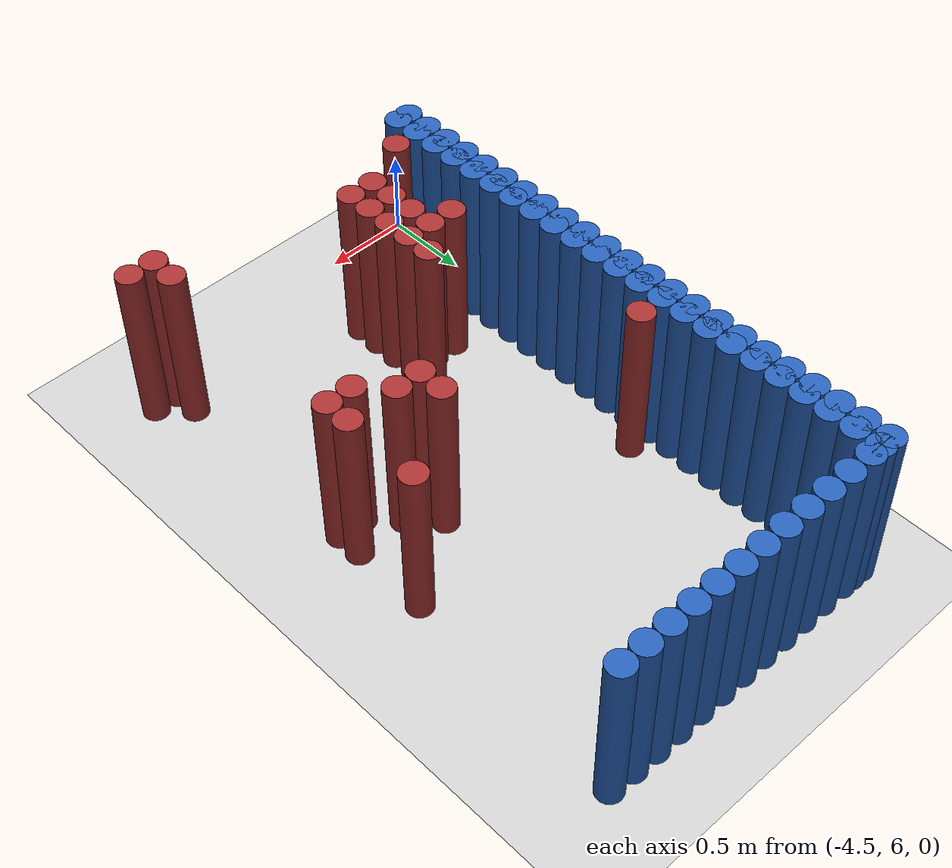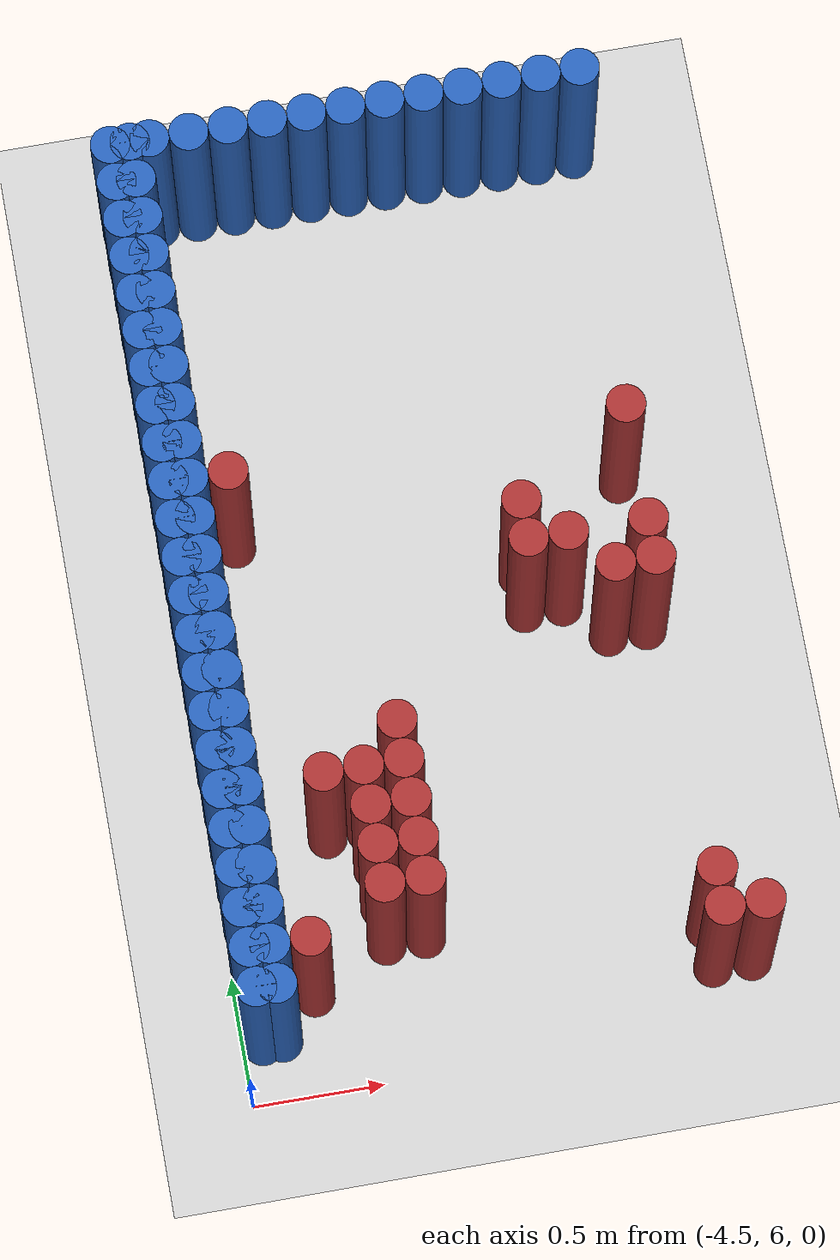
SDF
<sdf version="1.6">
 <world name="barn_world">
  <model name="ground_plane">
   <static>1</static>
   <link name="link">
    <collision name="collision">
     <geometry><plane><normal>0 0 1</normal><size>100 100</size></plane></geometry>
    </collision>
    <visual name="visual">
     <geometry><plane><normal>0 0 1</normal><size>100 100</size></plane></geometry>
     <material>
      <script><uri>file://media/materials/scripts/gazebo.material</uri><name>Gazebo/Grey</name></script>
     </material>
    </visual>
   </link>
  </model>
  <model name="unit_cylinder_133">
   <static>1</static>
   <pose>-4.3500 6.2250 0.5 0 0 0</pose>
   <link name="link">
    <collision name="collision">
     <geometry><cylinder><radius>0.075</radius><length>1</length></cylinder></geometry>
    </collision>
    <visual name="visual">
     <geometry><cylinder><radius>0.075</radius><length>1</length></cylinder></geometry>
     <material><ambient>0.152 0.379 0.72 1</ambient><diffuse>0.152 0.379 0.72 1</diffuse></material>
    </visual>
   </link>
  </model>
  <model name="unit_cylinder_134">
   <static>1</static>
   <pose>-4.3500 6.3750 0.5 0 0 0</pose>
   <link name="link">
    <collision name="collision">
     <geometry><cylinder><radius>0.075</radius><length>1</length></cylinder></geometry>
    </collision>
    <visual name="visual">
     <geometry><cylinder><radius>0.075</radius><length>1</length></cylinder></geometry>
     <material><ambient>0.152 0.379 0.72 1</ambient><diffuse>0.152 0.379 0.72 1</diffuse></material>
    </visual>
   </link>
  </model>
  <model name="unit_cylinder_135">
   <static>1</static>
   <pose>-4.3500 6.5250 0.5 0 0 0</pose>
   <link name="link">
    <collision name="collision">
     <geometry><cylinder><radius>0.075</radius><length>1</length></cylinder></geometry>
    </collision>
    <visual name="visual">
     <geometry><cylinder><radius>0.075</radius><length>1</length></cylinder></geometry>
     <material><ambient>0.152 0.379 0.72 1</ambient><diffuse>0.152 0.379 0.72 1</diffuse></material>
    </visual>
   </link>
  </model>
  <model name="unit_cylinder_136">
   <static>1</static>
   <pose>-4.3500 6.6750 0.5 0 0 0</pose>
   <link name="link">
    <collision name="collision">
     <geometry><cylinder><radius>0.075</radius><length>1</length></cylinder></geometry>
    </collision>
    <visual name="visual">
     <geometry><cylinder><radius>0.075</radius><length>1</length></cylinder></geometry>
     <material><ambient>0.152 0.379 0.72 1</ambient><diffuse>0.152 0.379 0.72 1</diffuse></material>
    </visual>
   </link>
  </model>
  <model name="unit_cylinder_137">
   <static>1</static>
   <pose>-4.3500 6.8250 0.5 0 0 0</pose>
   <link name="link">
    <collision name="collision">
     <geometry><cylinder><radius>0.075</radius><length>1</length></cylinder></geometry>
    </collision>
    <visual name="visual">
     <geometry><cylinder><radius>0.075</radius><length>1</length></cylinder></geometry>
     <material><ambient>0.152 0.379 0.72 1</ambient><diffuse>0.152 0.379 0.72 1</diffuse></material>
    </visual>
   </link>
  </model>
  <model name="unit_cylinder_138">
   <static>1</static>
   <pose>-4.3500 6.9750 0.5 0 0 0</pose>
   <link name="link">
    <collision name="collision">
     <geometry><cylinder><radius>0.075</radius><length>1</length></cylinder></geometry>
    </collision>
    <visual name="visual">
     <geometry><cylinder><radius>0.075</radius><length>1</length></cylinder></geometry>
     <material><ambient>0.152 0.379 0.72 1</ambient><diffuse>0.152 0.379 0.72 1</diffuse></material>
    </visual>
   </link>
  </model>
  <model name="unit_cylinder_139">
   <static>1</static>
   <pose>-4.3500 7.1250 0.5 0 0 0</pose>
   <link name="link">
    <collision name="collision">
     <geometry><cylinder><radius>0.075</radius><length>1</length></cylinder></geometry>
    </collision>
    <visual name="visual">
     <geometry><cylinder><radius>0.075</radius><length>1</length></cylinder></geometry>
     <material><ambient>0.152 0.379 0.72 1</ambient><diffuse>0.152 0.379 0.72 1</diffuse></material>
    </visual>
   </link>
  </model>
  <model name="unit_cylinder_140">
   <static>1</static>
   <pose>-4.3500 7.2750 0.5 0 0 0</pose>
   <link name="link">
    <collision name="collision">
     <geometry><cylinder><radius>0.075</radius><length>1</length></cylinder></geometry>
    </collision>
    <visual name="visual">
     <geometry><cylinder><radius>0.075</radius><length>1</length></cylinder></geometry>
     <material><ambient>0.152 0.379 0.72 1</ambient><diffuse>0.152 0.379 0.72 1</diffuse></material>
    </visual>
   </link>
  </model>
  <model name="unit_cylinder_141">
   <static>1</static>
   <pose>-4.3500 7.4250 0.5 0 0 0</pose>
   <link name="link">
    <collision name="collision">
     <geometry><cylinder><radius>0.075</radius><length>1</length></cylinder></geometry>
    </collision>
    <visual name="visual">
     <geometry><cylinder><radius>0.075</radius><length>1</length></cylinder></geometry>
     <material><ambient>0.152 0.379 0.72 1</ambient><diffuse>0.152 0.379 0.72 1</diffuse></material>
    </visual>
   </link>
  </model>
  <model name="unit_cylinder_142">
   <static>1</static>
   <pose>-4.3500 7.5750 0.5 0 0 0</pose>
   <link name="link">
    <collision name="collision">
     <geometry><cylinder><radius>0.075</radius><length>1</length></cylinder></geometry>
    </collision>
    <visual name="visual">
     <geometry><cylinder><radius>0.075</radius><length>1</length></cylinder></geometry>
     <material><ambient>0.152 0.379 0.72 1</ambient><diffuse>0.152 0.379 0.72 1</diffuse></material>
    </visual>
   </link>
  </model>
  <model name="unit_cylinder_143">
   <static>1</static>
   <pose>-4.3500 7.7250 0.5 0 0 0</pose>
   <link name="link">
    <collision name="collision">
     <geometry><cylinder><radius>0.075</radius><length>1</length></cylinder></geometry>
    </collision>
    <visual name="visual">
     <geometry><cylinder><radius>0.075</radius><length>1</length></cylinder></geometry>
     <material><ambient>0.152 0.379 0.72 1</ambient><diffuse>0.152 0.379 0.72 1</diffuse></material>
    </visual>
   </link>
  </model>
  <model name="unit_cylinder_144">
   <static>1</static>
   <pose>-4.3500 7.8750 0.5 0 0 0</pose>
   <link name="link">
    <collision name="collision">
     <geometry><cylinder><radius>0.075</radius><length>1</length></cylinder></geometry>
    </collision>
    <visual name="visual">
     <geometry><cylinder><radius>0.075</radius><length>1</length></cylinder></geometry>
     <material><ambient>0.152 0.379 0.72 1</ambient><diffuse>0.152 0.379 0.72 1</diffuse></material>
    </visual>
   </link>
  </model>
  <model name="unit_cylinder_145">
   <static>1</static>
   <pose>-4.3500 8.0250 0.5 0 0 0</pose>
   <link name="link">
    <collision name="collision">
     <geometry><cylinder><radius>0.075</radius><length>1</length></cylinder></geometry>
    </collision>
    <visual name="visual">
     <geometry><cylinder><radius>0.075</radius><length>1</length></cylinder></geometry>
     <material><ambient>0.152 0.379 0.72 1</ambient><diffuse>0.152 0.379 0.72 1</diffuse></material>
    </visual>
   </link>
  </model>
  <model name="unit_cylinder_146">
   <static>1</static>
   <pose>-4.3500 8.1750 0.5 0 0 0</pose>
   <link name="link">
    <collision name="collision">
     <geometry><cylinder><radius>0.075</radius><length>1</length></cylinder></geometry>
    </collision>
    <visual name="visual">
     <geometry><cylinder><radius>0.075</radius><length>1</length></cylinder></geometry>
     <material><ambient>0.152 0.379 0.72 1</ambient><diffuse>0.152 0.379 0.72 1</diffuse></material>
    </visual>
   </link>
  </model>
  <model name="unit_cylinder_147">
   <static>1</static>
   <pose>-4.3500 8.3250 0.5 0 0 0</pose>
   <link name="link">
    <collision name="collision">
     <geometry><cylinder><radius>0.075</radius><length>1</length></cylinder></geometry>
    </collision>
    <visual name="visual">
     <geometry><cylinder><radius>0.075</radius><length>1</length></cylinder></geometry>
     <material><ambient>0.152 0.379 0.72 1</ambient><diffuse>0.152 0.379 0.72 1</diffuse></material>
    </visual>
   </link>
  </model>
  <model name="unit_cylinder_148">
   <static>1</static>
   <pose>-4.3500 8.4750 0.5 0 0 0</pose>
   <link name="link">
    <collision name="collision">
     <geometry><cylinder><radius>0.075</radius><length>1</length></cylinder></geometry>
    </collision>
    <visual name="visual">
     <geometry><cylinder><radius>0.075</radius><length>1</length></cylinder></geometry>
     <material><ambient>0.152 0.379 0.72 1</ambient><diffuse>0.152 0.379 0.72 1</diffuse></material>
    </visual>
   </link>
  </model>
  <model name="unit_cylinder_149">
   <static>1</static>
   <pose>-4.3500 8.6250 0.5 0 0 0</pose>
   <link name="link">
    <collision name="collision">
     <geometry><cylinder><radius>0.075</radius><length>1</length></cylinder></geometry>
    </collision>
    <visual name="visual">
     <geometry><cylinder><radius>0.075</radius><length>1</length></cylinder></geometry>
     <material><ambient>0.152 0.379 0.72 1</ambient><diffuse>0.152 0.379 0.72 1</diffuse></material>
    </visual>
   </link>
  </model>
  <model name="unit_cylinder_150">
   <static>1</static>
   <pose>-4.3500 8.7750 0.5 0 0 0</pose>
   <link name="link">
    <collision name="collision">
     <geometry><cylinder><radius>0.075</radius><length>1</length></cylinder></geometry>
    </collision>
    <visual name="visual">
     <geometry><cylinder><radius>0.075</radius><length>1</length></cylinder></geometry>
     <material><ambient>0.152 0.379 0.72 1</ambient><diffuse>0.152 0.379 0.72 1</diffuse></material>
    </visual>
   </link>
  </model>
  <model name="unit_cylinder_151">
   <static>1</static>
   <pose>-4.3500 8.9250 0.5 0 0 0</pose>
   <link name="link">
    <collision name="collision">
     <geometry><cylinder><radius>0.075</radius><length>1</length></cylinder></geometry>
    </collision>
    <visual name="visual">
     <geometry><cylinder><radius>0.075</radius><length>1</length></cylinder></geometry>
     <material><ambient>0.152 0.379 0.72 1</ambient><diffuse>0.152 0.379 0.72 1</diffuse></material>
    </visual>
   </link>
  </model>
  <model name="unit_cylinder_152">
   <static>1</static>
   <pose>-4.3500 9.0750 0.5 0 0 0</pose>
   <link name="link">
    <collision name="collision">
     <geometry><cylinder><radius>0.075</radius><length>1</length></cylinder></geometry>
    </collision>
    <visual name="visual">
     <geometry><cylinder><radius>0.075</radius><length>1</length></cylinder></geometry>
     <material><ambient>0.152 0.379 0.72 1</ambient><diffuse>0.152 0.379 0.72 1</diffuse></material>
    </visual>
   </link>
  </model>
  <model name="unit_cylinder_153">
   <static>1</static>
   <pose>-4.3500 9.2250 0.5 0 0 0</pose>
   <link name="link">
    <collision name="collision">
     <geometry><cylinder><radius>0.075</radius><length>1</length></cylinder></geometry>
    </collision>
    <visual name="visual">
     <geometry><cylinder><radius>0.075</radius><length>1</length></cylinder></geometry>
     <material><ambient>0.152 0.379 0.72 1</ambient><diffuse>0.152 0.379 0.72 1</diffuse></material>
    </visual>
   </link>
  </model>
  <model name="unit_cylinder_154">
   <static>1</static>
   <pose>-4.3500 9.3750 0.5 0 0 0</pose>
   <link name="link">
    <collision name="collision">
     <geometry><cylinder><radius>0.075</radius><length>1</length></cylinder></geometry>
    </collision>
    <visual name="visual">
     <geometry><cylinder><radius>0.075</radius><length>1</length></cylinder></geometry>
     <material><ambient>0.152 0.379 0.72 1</ambient><diffuse>0.152 0.379 0.72 1</diffuse></material>
    </visual>
   </link>
  </model>
  <model name="unit_cylinder_155">
   <static>1</static>
   <pose>-4.3500 9.5250 0.5 0 0 0</pose>
   <link name="link">
    <collision name="collision">
     <geometry><cylinder><radius>0.075</radius><length>1</length></cylinder></geometry>
    </collision>
    <visual name="visual">
     <geometry><cylinder><radius>0.075</radius><length>1</length></cylinder></geometry>
     <material><ambient>0.152 0.379 0.72 1</ambient><diffuse>0.152 0.379 0.72 1</diffuse></material>
    </visual>
   </link>
  </model>
  <model name="unit_cylinder_156">
   <static>1</static>
   <pose>-4.2000 6.3750 0.5 0 0 0</pose>
   <link name="link">
    <collision name="collision">
     <geometry><cylinder><radius>0.075</radius><length>1</length></cylinder></geometry>
    </collision>
    <visual name="visual">
     <geometry><cylinder><radius>0.075</radius><length>1</length></cylinder></geometry>
     <material><ambient>0.648 0.192 0.192 1</ambient><diffuse>0.648 0.192 0.192 1</diffuse></material>
    </visual>
   </link>
  </model>
  <model name="unit_cylinder_157">
   <static>1</static>
   <pose>-4.2000 8.1750 0.5 0 0 0</pose>
   <link name="link">
    <collision name="collision">
     <geometry><cylinder><radius>0.075</radius><length>1</length></cylinder></geometry>
    </collision>
    <visual name="visual">
     <geometry><cylinder><radius>0.075</radius><length>1</length></cylinder></geometry>
     <material><ambient>0.648 0.192 0.192 1</ambient><diffuse>0.648 0.192 0.192 1</diffuse></material>
    </visual>
   </link>
  </model>
  <model name="unit_cylinder_158">
   <static>1</static>
   <pose>-4.0500 6.9750 0.5 0 0 0</pose>
   <link name="link">
    <collision name="collision">
     <geometry><cylinder><radius>0.075</radius><length>1</length></cylinder></geometry>
    </collision>
    <visual name="visual">
     <geometry><cylinder><radius>0.075</radius><length>1</length></cylinder></geometry>
     <material><ambient>0.648 0.192 0.192 1</ambient><diffuse>0.648 0.192 0.192 1</diffuse></material>
    </visual>
   </link>
  </model>
  <model name="unit_cylinder_159">
   <static>1</static>
   <pose>-3.9000 6.5250 0.5 0 0 0</pose>
   <link name="link">
    <collision name="collision">
     <geometry><cylinder><radius>0.075</radius><length>1</length></cylinder></geometry>
    </collision>
    <visual name="visual">
     <geometry><cylinder><radius>0.075</radius><length>1</length></cylinder></geometry>
     <material><ambient>0.648 0.192 0.192 1</ambient><diffuse>0.648 0.192 0.192 1</diffuse></material>
    </visual>
   </link>
  </model>
  <model name="unit_cylinder_160">
   <static>1</static>
   <pose>-3.9000 6.6750 0.5 0 0 0</pose>
   <link name="link">
    <collision name="collision">
     <geometry><cylinder><radius>0.075</radius><length>1</length></cylinder></geometry>
    </collision>
    <visual name="visual">
     <geometry><cylinder><radius>0.075</radius><length>1</length></cylinder></geometry>
     <material><ambient>0.648 0.192 0.192 1</ambient><diffuse>0.648 0.192 0.192 1</diffuse></material>
    </visual>
   </link>
  </model>
  <model name="unit_cylinder_161">
   <static>1</static>
   <pose>-3.9000 6.8250 0.5 0 0 0</pose>
   <link name="link">
    <collision name="collision">
     <geometry><cylinder><radius>0.075</radius><length>1</length></cylinder></geometry>
    </collision>
    <visual name="visual">
     <geometry><cylinder><radius>0.075</radius><length>1</length></cylinder></geometry>
     <material><ambient>0.648 0.192 0.192 1</ambient><diffuse>0.648 0.192 0.192 1</diffuse></material>
    </visual>
   </link>
  </model>
  <model name="unit_cylinder_162">
   <static>1</static>
   <pose>-3.9000 6.9750 0.5 0 0 0</pose>
   <link name="link">
    <collision name="collision">
     <geometry><cylinder><radius>0.075</radius><length>1</length></cylinder></geometry>
    </collision>
    <visual name="visual">
     <geometry><cylinder><radius>0.075</radius><length>1</length></cylinder></geometry>
     <material><ambient>0.648 0.192 0.192 1</ambient><diffuse>0.648 0.192 0.192 1</diffuse></material>
    </visual>
   </link>
  </model>
  <model name="unit_cylinder_163">
   <static>1</static>
   <pose>-3.7500 6.5250 0.5 0 0 0</pose>
   <link name="link">
    <collision name="collision">
     <geometry><cylinder><radius>0.075</radius><length>1</length></cylinder></geometry>
    </collision>
    <visual name="visual">
     <geometry><cylinder><radius>0.075</radius><length>1</length></cylinder></geometry>
     <material><ambient>0.648 0.192 0.192 1</ambient><diffuse>0.648 0.192 0.192 1</diffuse></material>
    </visual>
   </link>
  </model>
  <model name="unit_cylinder_164">
   <static>1</static>
   <pose>-3.7500 6.6750 0.5 0 0 0</pose>
   <link name="link">
    <collision name="collision">
     <geometry><cylinder><radius>0.075</radius><length>1</length></cylinder></geometry>
    </collision>
    <visual name="visual">
     <geometry><cylinder><radius>0.075</radius><length>1</length></cylinder></geometry>
     <material><ambient>0.648 0.192 0.192 1</ambient><diffuse>0.648 0.192 0.192 1</diffuse></material>
    </visual>
   </link>
  </model>
  <model name="unit_cylinder_165">
   <static>1</static>
   <pose>-3.7500 6.8250 0.5 0 0 0</pose>
   <link name="link">
    <collision name="collision">
     <geometry><cylinder><radius>0.075</radius><length>1</length></cylinder></geometry>
    </collision>
    <visual name="visual">
     <geometry><cylinder><radius>0.075</radius><length>1</length></cylinder></geometry>
     <material><ambient>0.648 0.192 0.192 1</ambient><diffuse>0.648 0.192 0.192 1</diffuse></material>
    </visual>
   </link>
  </model>
  <model name="unit_cylinder_166">
   <static>1</static>
   <pose>-3.7500 6.9750 0.5 0 0 0</pose>
   <link name="link">
    <collision name="collision">
     <geometry><cylinder><radius>0.075</radius><length>1</length></cylinder></geometry>
    </collision>
    <visual name="visual">
     <geometry><cylinder><radius>0.075</radius><length>1</length></cylinder></geometry>
     <material><ambient>0.648 0.192 0.192 1</ambient><diffuse>0.648 0.192 0.192 1</diffuse></material>
    </visual>
   </link>
  </model>
  <model name="unit_cylinder_167">
   <static>1</static>
   <pose>-3.7500 7.1250 0.5 0 0 0</pose>
   <link name="link">
    <collision name="collision">
     <geometry><cylinder><radius>0.075</radius><length>1</length></cylinder></geometry>
    </collision>
    <visual name="visual">
     <geometry><cylinder><radius>0.075</radius><length>1</length></cylinder></geometry>
     <material><ambient>0.648 0.192 0.192 1</ambient><diffuse>0.648 0.192 0.192 1</diffuse></material>
    </visual>
   </link>
  </model>
  <model name="unit_cylinder_171">
   <static>1</static>
   <pose>-3.1500 7.7250 0.5 0 0 0</pose>
   <link name="link">
    <collision name="collision">
     <geometry><cylinder><radius>0.075</radius><length>1</length></cylinder></geometry>
    </collision>
    <visual name="visual">
     <geometry><cylinder><radius>0.075</radius><length>1</length></cylinder></geometry>
     <material><ambient>0.648 0.192 0.192 1</ambient><diffuse>0.648 0.192 0.192 1</diffuse></material>
    </visual>
   </link>
  </model>
  <model name="unit_cylinder_172">
   <static>1</static>
   <pose>-3.1500 7.8750 0.5 0 0 0</pose>
   <link name="link">
    <collision name="collision">
     <geometry><cylinder><radius>0.075</radius><length>1</length></cylinder></geometry>
    </collision>
    <visual name="visual">
     <geometry><cylinder><radius>0.075</radius><length>1</length></cylinder></geometry>
     <material><ambient>0.648 0.192 0.192 1</ambient><diffuse>0.648 0.192 0.192 1</diffuse></material>
    </visual>
   </link>
  </model>
  <model name="unit_cylinder_173">
   <static>1</static>
   <pose>-3.0000 7.7250 0.5 0 0 0</pose>
   <link name="link">
    <collision name="collision">
     <geometry><cylinder><radius>0.075</radius><length>1</length></cylinder></geometry>
    </collision>
    <visual name="visual">
     <geometry><cylinder><radius>0.075</radius><length>1</length></cylinder></geometry>
     <material><ambient>0.648 0.192 0.192 1</ambient><diffuse>0.648 0.192 0.192 1</diffuse></material>
    </visual>
   </link>
  </model>
  <model name="unit_cylinder_174">
   <static>1</static>
   <pose>-2.8500 7.5750 0.5 0 0 0</pose>
   <link name="link">
    <collision name="collision">
     <geometry><cylinder><radius>0.075</radius><length>1</length></cylinder></geometry>
    </collision>
    <visual name="visual">
     <geometry><cylinder><radius>0.075</radius><length>1</length></cylinder></geometry>
     <material><ambient>0.648 0.192 0.192 1</ambient><diffuse>0.648 0.192 0.192 1</diffuse></material>
    </visual>
   </link>
  </model>
  <model name="unit_cylinder_176">
   <static>1</static>
   <pose>-2.7000 6.2250 0.5 0 0 0</pose>
   <link name="link">
    <collision name="collision">
     <geometry><cylinder><radius>0.075</radius><length>1</length></cylinder></geometry>
    </collision>
    <visual name="visual">
     <geometry><cylinder><radius>0.075</radius><length>1</length></cylinder></geometry>
     <material><ambient>0.648 0.192 0.192 1</ambient><diffuse>0.648 0.192 0.192 1</diffuse></material>
    </visual>
   </link>
  </model>
  <model name="unit_cylinder_177">
   <static>1</static>
   <pose>-2.7000 6.3750 0.5 0 0 0</pose>
   <link name="link">
    <collision name="collision">
     <geometry><cylinder><radius>0.075</radius><length>1</length></cylinder></geometry>
    </collision>
    <visual name="visual">
     <geometry><cylinder><radius>0.075</radius><length>1</length></cylinder></geometry>
     <material><ambient>0.648 0.192 0.192 1</ambient><diffuse>0.648 0.192 0.192 1</diffuse></material>
    </visual>
   </link>
  </model>
  <model name="unit_cylinder_178">
   <static>1</static>
   <pose>-2.7000 7.5750 0.5 0 0 0</pose>
   <link name="link">
    <collision name="collision">
     <geometry><cylinder><radius>0.075</radius><length>1</length></cylinder></geometry>
    </collision>
    <visual name="visual">
     <geometry><cylinder><radius>0.075</radius><length>1</length></cylinder></geometry>
     <material><ambient>0.648 0.192 0.192 1</ambient><diffuse>0.648 0.192 0.192 1</diffuse></material>
    </visual>
   </link>
  </model>
  <model name="unit_cylinder_179">
   <static>1</static>
   <pose>-2.7000 7.7250 0.5 0 0 0</pose>
   <link name="link">
    <collision name="collision">
     <geometry><cylinder><radius>0.075</radius><length>1</length></cylinder></geometry>
    </collision>
    <visual name="visual">
     <geometry><cylinder><radius>0.075</radius><length>1</length></cylinder></geometry>
     <material><ambient>0.648 0.192 0.192 1</ambient><diffuse>0.648 0.192 0.192 1</diffuse></material>
    </visual>
   </link>
  </model>
  <model name="unit_cylinder_180">
   <static>1</static>
   <pose>-2.7000 8.1750 0.5 0 0 0</pose>
   <link name="link">
    <collision name="collision">
     <geometry><cylinder><radius>0.075</radius><length>1</length></cylinder></geometry>
    </collision>
    <visual name="visual">
     <geometry><cylinder><radius>0.075</radius><length>1</length></cylinder></geometry>
     <material><ambient>0.648 0.192 0.192 1</ambient><diffuse>0.648 0.192 0.192 1</diffuse></material>
    </visual>
   </link>
  </model>
  <model name="unit_cylinder_181">
   <static>1</static>
   <pose>-2.5500 6.2250 0.5 0 0 0</pose>
   <link name="link">
    <collision name="collision">
     <geometry><cylinder><radius>0.075</radius><length>1</length></cylinder></geometry>
    </collision>
    <visual name="visual">
     <geometry><cylinder><radius>0.075</radius><length>1</length></cylinder></geometry>
     <material><ambient>0.648 0.192 0.192 1</ambient><diffuse>0.648 0.192 0.192 1</diffuse></material>
    </visual>
   </link>
  </model>
  <model name="unit_cylinder_251">
   <static>1</static>
   <pose>-2.6250 9.5250 0.5 0 0 0</pose>
   <link name="link">
    <collision name="collision">
     <geometry><cylinder><radius>0.075</radius><length>1</length></cylinder></geometry>
    </collision>
    <visual name="visual">
     <geometry><cylinder><radius>0.075</radius><length>1</length></cylinder></geometry>
     <material><ambient>0.152 0.379 0.72 1</ambient><diffuse>0.152 0.379 0.72 1</diffuse></material>
    </visual>
   </link>
  </model>
  <model name="unit_cylinder_252">
   <static>1</static>
   <pose>-2.7750 9.5250 0.5 0 0 0</pose>
   <link name="link">
    <collision name="collision">
     <geometry><cylinder><radius>0.075</radius><length>1</length></cylinder></geometry>
    </collision>
    <visual name="visual">
     <geometry><cylinder><radius>0.075</radius><length>1</length></cylinder></geometry>
     <material><ambient>0.152 0.379 0.72 1</ambient><diffuse>0.152 0.379 0.72 1</diffuse></material>
    </visual>
   </link>
  </model>
  <model name="unit_cylinder_253">
   <static>1</static>
   <pose>-2.9250 9.5250 0.5 0 0 0</pose>
   <link name="link">
    <collision name="collision">
     <geometry><cylinder><radius>0.075</radius><length>1</length></cylinder></geometry>
    </collision>
    <visual name="visual">
     <geometry><cylinder><radius>0.075</radius><length>1</length></cylinder></geometry>
     <material><ambient>0.152 0.379 0.72 1</ambient><diffuse>0.152 0.379 0.72 1</diffuse></material>
    </visual>
   </link>
  </model>
  <model name="unit_cylinder_254">
   <static>1</static>
   <pose>-3.0750 9.5250 0.5 0 0 0</pose>
   <link name="link">
    <collision name="collision">
     <geometry><cylinder><radius>0.075</radius><length>1</length></cylinder></geometry>
    </collision>
    <visual name="visual">
     <geometry><cylinder><radius>0.075</radius><length>1</length></cylinder></geometry>
     <material><ambient>0.152 0.379 0.72 1</ambient><diffuse>0.152 0.379 0.72 1</diffuse></material>
    </visual>
   </link>
  </model>
  <model name="unit_cylinder_255">
   <static>1</static>
   <pose>-3.2250 9.5250 0.5 0 0 0</pose>
   <link name="link">
    <collision name="collision">
     <geometry><cylinder><radius>0.075</radius><length>1</length></cylinder></geometry>
    </collision>
    <visual name="visual">
     <geometry><cylinder><radius>0.075</radius><length>1</length></cylinder></geometry>
     <material><ambient>0.152 0.379 0.72 1</ambient><diffuse>0.152 0.379 0.72 1</diffuse></material>
    </visual>
   </link>
  </model>
  <model name="unit_cylinder_256">
   <static>1</static>
   <pose>-3.3750 9.5250 0.5 0 0 0</pose>
   <link name="link">
    <collision name="collision">
     <geometry><cylinder><radius>0.075</radius><length>1</length></cylinder></geometry>
    </collision>
    <visual name="visual">
     <geometry><cylinder><radius>0.075</radius><length>1</length></cylinder></geometry>
     <material><ambient>0.152 0.379 0.72 1</ambient><diffuse>0.152 0.379 0.72 1</diffuse></material>
    </visual>
   </link>
  </model>
  <model name="unit_cylinder_257">
   <static>1</static>
   <pose>-3.5250 9.5250 0.5 0 0 0</pose>
   <link name="link">
    <collision name="collision">
     <geometry><cylinder><radius>0.075</radius><length>1</length></cylinder></geometry>
    </collision>
    <visual name="visual">
     <geometry><cylinder><radius>0.075</radius><length>1</length></cylinder></geometry>
     <material><ambient>0.152 0.379 0.72 1</ambient><diffuse>0.152 0.379 0.72 1</diffuse></material>
    </visual>
   </link>
  </model>
  <model name="unit_cylinder_258">
   <static>1</static>
   <pose>-3.6750 9.5250 0.5 0 0 0</pose>
   <link name="link">
    <collision name="collision">
     <geometry><cylinder><radius>0.075</radius><length>1</length></cylinder></geometry>
    </collision>
    <visual name="visual">
     <geometry><cylinder><radius>0.075</radius><length>1</length></cylinder></geometry>
     <material><ambient>0.152 0.379 0.72 1</ambient><diffuse>0.152 0.379 0.72 1</diffuse></material>
    </visual>
   </link>
  </model>
  <model name="unit_cylinder_259">
   <static>1</static>
   <pose>-3.8250 9.5250 0.5 0 0 0</pose>
   <link name="link">
    <collision name="collision">
     <geometry><cylinder><radius>0.075</radius><length>1</length></cylinder></geometry>
    </collision>
    <visual name="visual">
     <geometry><cylinder><radius>0.075</radius><length>1</length></cylinder></geometry>
     <material><ambient>0.152 0.379 0.72 1</ambient><diffuse>0.152 0.379 0.72 1</diffuse></material>
    </visual>
   </link>
  </model>
  <model name="unit_cylinder_260">
   <static>1</static>
   <pose>-3.9750 9.5250 0.5 0 0 0</pose>
   <link name="link">
    <collision name="collision">
     <geometry><cylinder><radius>0.075</radius><length>1</length></cylinder></geometry>
    </collision>
    <visual name="visual">
     <geometry><cylinder><radius>0.075</radius><length>1</length></cylinder></geometry>
     <material><ambient>0.152 0.379 0.72 1</ambient><diffuse>0.152 0.379 0.72 1</diffuse></material>
    </visual>
   </link>
  </model>
  <model name="unit_cylinder_261">
   <static>1</static>
   <pose>-4.1250 9.5250 0.5 0 0 0</pose>
   <link name="link">
    <collision name="collision">
     <geometry><cylinder><radius>0.075</radius><length>1</length></cylinder></geometry>
    </collision>
    <visual name="visual">
     <geometry><cylinder><radius>0.075</radius><length>1</length></cylinder></geometry>
     <material><ambient>0.152 0.379 0.72 1</ambient><diffuse>0.152 0.379 0.72 1</diffuse></material>
    </visual>
   </link>
  </model>
  <model name="unit_cylinder_262">
   <static>1</static>
   <pose>-4.2750 9.5250 0.5 0 0 0</pose>
   <link name="link">
    <collision name="collision">
     <geometry><cylinder><radius>0.075</radius><length>1</length></cylinder></geometry>
    </collision>
    <visual name="visual">
     <geometry><cylinder><radius>0.075</radius><length>1</length></cylinder></geometry>
     <material><ambient>0.152 0.379 0.72 1</ambient><diffuse>0.152 0.379 0.72 1</diffuse></material>
    </visual>
   </link>
  </model>
  <model name="unit_cylinder_263">
   <static>1</static>
   <pose>-4.4250 9.5250 0.5 0 0 0</pose>
   <link name="link">
    <collision name="collision">
     <geometry><cylinder><radius>0.075</radius><length>1</length></cylinder></geometry>
    </collision>
    <visual name="visual">
     <geometry><cylinder><radius>0.075</radius><length>1</length></cylinder></geometry>
     <material><ambient>0.152 0.379 0.72 1</ambient><diffuse>0.152 0.379 0.72 1</diffuse></material>
    </visual>
   </link>
  </model>
  <model name="unit_cylinder_279">
   <static>1</static>
   <pose>-4.4250 6.2250 0.5 0 0 0</pose>
   <link name="link">
    <collision name="collision">
     <geometry><cylinder><radius>0.075</radius><length>1</length></cylinder></geometry>
    </collision>
    <visual name="visual">
     <geometry><cylinder><radius>0.075</radius><length>1</length></cylinder></geometry>
     <material><ambient>0.152 0.379 0.72 1</ambient><diffuse>0.152 0.379 0.72 1</diffuse></material>
    </visual>
   </link>
  </model>
  <model name="unit_cylinder_281">
   <static>1</static>
   <pose>-4.4250 6.3750 0.5 0 0 0</pose>
   <link name="link">
    <collision name="collision">
     <geometry><cylinder><radius>0.075</radius><length>1</length></cylinder></geometry>
    </collision>
    <visual name="visual">
     <geometry><cylinder><radius>0.075</radius><length>1</length></cylinder></geometry>
     <material><ambient>0.152 0.379 0.72 1</ambient><diffuse>0.152 0.379 0.72 1</diffuse></material>
    </visual>
   </link>
  </model>
  <model name="unit_cylinder_283">
   <static>1</static>
   <pose>-4.4250 6.5250 0.5 0 0 0</pose>
   <link name="link">
    <collision name="collision">
     <geometry><cylinder><radius>0.075</radius><length>1</length></cylinder></geometry>
    </collision>
    <visual name="visual">
     <geometry><cylinder><radius>0.075</radius><length>1</length></cylinder></geometry>
     <material><ambient>0.152 0.379 0.72 1</ambient><diffuse>0.152 0.379 0.72 1</diffuse></material>
    </visual>
   </link>
  </model>
  <model name="unit_cylinder_285">
   <static>1</static>
   <pose>-4.4250 6.6750 0.5 0 0 0</pose>
   <link name="link">
    <collision name="collision">
     <geometry><cylinder><radius>0.075</radius><length>1</length></cylinder></geometry>
    </collision>
    <visual name="visual">
     <geometry><cylinder><radius>0.075</radius><length>1</length></cylinder></geometry>
     <material><ambient>0.152 0.379 0.72 1</ambient><diffuse>0.152 0.379 0.72 1</diffuse></material>
    </visual>
   </link>
  </model>
  <model name="unit_cylinder_287">
   <static>1</static>
   <pose>-4.4250 6.8250 0.5 0 0 0</pose>
   <link name="link">
    <collision name="collision">
     <geometry><cylinder><radius>0.075</radius><length>1</length></cylinder></geometry>
    </collision>
    <visual name="visual">
     <geometry><cylinder><radius>0.075</radius><length>1</length></cylinder></geometry>
     <material><ambient>0.152 0.379 0.72 1</ambient><diffuse>0.152 0.379 0.72 1</diffuse></material>
    </visual>
   </link>
  </model>
  <model name="unit_cylinder_289">
   <static>1</static>
   <pose>-4.4250 6.9750 0.5 0 0 0</pose>
   <link name="link">
    <collision name="collision">
     <geometry><cylinder><radius>0.075</radius><length>1</length></cylinder></geometry>
    </collision>
    <visual name="visual">
     <geometry><cylinder><radius>0.075</radius><length>1</length></cylinder></geometry>
     <material><ambient>0.152 0.379 0.72 1</ambient><diffuse>0.152 0.379 0.72 1</diffuse></material>
    </visual>
   </link>
  </model>
  <model name="unit_cylinder_291">
   <static>1</static>
   <pose>-4.4250 7.1250 0.5 0 0 0</pose>
   <link name="link">
    <collision name="collision">
     <geometry><cylinder><radius>0.075</radius><length>1</length></cylinder></geometry>
    </collision>
    <visual name="visual">
     <geometry><cylinder><radius>0.075</radius><length>1</length></cylinder></geometry>
     <material><ambient>0.152 0.379 0.72 1</ambient><diffuse>0.152 0.379 0.72 1</diffuse></material>
    </visual>
   </link>
  </model>
  <model name="unit_cylinder_293">
   <static>1</static>
   <pose>-4.4250 7.2750 0.5 0 0 0</pose>
   <link name="link">
    <collision name="collision">
     <geometry><cylinder><radius>0.075</radius><length>1</length></cylinder></geometry>
    </collision>
    <visual name="visual">
     <geometry><cylinder><radius>0.075</radius><length>1</length></cylinder></geometry>
     <material><ambient>0.152 0.379 0.72 1</ambient><diffuse>0.152 0.379 0.72 1</diffuse></material>
    </visual>
   </link>
  </model>
  <model name="unit_cylinder_295">
   <static>1</static>
   <pose>-4.4250 7.4250 0.5 0 0 0</pose>
   <link name="link">
    <collision name="collision">
     <geometry><cylinder><radius>0.075</radius><length>1</length></cylinder></geometry>
    </collision>
    <visual name="visual">
     <geometry><cylinder><radius>0.075</radius><length>1</length></cylinder></geometry>
     <material><ambient>0.152 0.379 0.72 1</ambient><diffuse>0.152 0.379 0.72 1</diffuse></material>
    </visual>
   </link>
  </model>
  <model name="unit_cylinder_297">
   <static>1</static>
   <pose>-4.4250 7.5750 0.5 0 0 0</pose>
   <link name="link">
    <collision name="collision">
     <geometry><cylinder><radius>0.075</radius><length>1</length></cylinder></geometry>
    </collision>
    <visual name="visual">
     <geometry><cylinder><radius>0.075</radius><length>1</length></cylinder></geometry>
     <material><ambient>0.152 0.379 0.72 1</ambient><diffuse>0.152 0.379 0.72 1</diffuse></material>
    </visual>
   </link>
  </model>
  <model name="unit_cylinder_299">
   <static>1</static>
   <pose>-4.4250 7.7250 0.5 0 0 0</pose>
   <link name="link">
    <collision name="collision">
     <geometry><cylinder><radius>0.075</radius><length>1</length></cylinder></geometry>
    </collision>
    <visual name="visual">
     <geometry><cylinder><radius>0.075</radius><length>1</length></cylinder></geometry>
     <material><ambient>0.152 0.379 0.72 1</ambient><diffuse>0.152 0.379 0.72 1</diffuse></material>
    </visual>
   </link>
  </model>
  <model name="unit_cylinder_301">
   <static>1</static>
   <pose>-4.4250 7.8750 0.5 0 0 0</pose>
   <link name="link">
    <collision name="collision">
     <geometry><cylinder><radius>0.075</radius><length>1</length></cylinder></geometry>
    </collision>
    <visual name="visual">
     <geometry><cylinder><radius>0.075</radius><length>1</length></cylinder></geometry>
     <material><ambient>0.152 0.379 0.72 1</ambient><diffuse>0.152 0.379 0.72 1</diffuse></material>
    </visual>
   </link>
  </model>
  <model name="unit_cylinder_303">
   <static>1</static>
   <pose>-4.4250 8.0250 0.5 0 0 0</pose>
   <link name="link">
    <collision name="collision">
     <geometry><cylinder><radius>0.075</radius><length>1</length></cylinder></geometry>
    </collision>
    <visual name="visual">
     <geometry><cylinder><radius>0.075</radius><length>1</length></cylinder></geometry>
     <material><ambient>0.152 0.379 0.72 1</ambient><diffuse>0.152 0.379 0.72 1</diffuse></material>
    </visual>
   </link>
  </model>
  <model name="unit_cylinder_305">
   <static>1</static>
   <pose>-4.4250 8.1750 0.5 0 0 0</pose>
   <link name="link">
    <collision name="collision">
     <geometry><cylinder><radius>0.075</radius><length>1</length></cylinder></geometry>
    </collision>
    <visual name="visual">
     <geometry><cylinder><radius>0.075</radius><length>1</length></cylinder></geometry>
     <material><ambient>0.152 0.379 0.72 1</ambient><diffuse>0.152 0.379 0.72 1</diffuse></material>
    </visual>
   </link>
  </model>
  <model name="unit_cylinder_307">
   <static>1</static>
   <pose>-4.4250 8.3250 0.5 0 0 0</pose>
   <link name="link">
    <collision name="collision">
     <geometry><cylinder><radius>0.075</radius><length>1</length></cylinder></geometry>
    </collision>
    <visual name="visual">
     <geometry><cylinder><radius>0.075</radius><length>1</length></cylinder></geometry>
     <material><ambient>0.152 0.379 0.72 1</ambient><diffuse>0.152 0.379 0.72 1</diffuse></material>
    </visual>
   </link>
  </model>
  <model name="unit_cylinder_309">
   <static>1</static>
   <pose>-4.4250 8.4750 0.5 0 0 0</pose>
   <link name="link">
    <collision name="collision">
     <geometry><cylinder><radius>0.075</radius><length>1</length></cylinder></geometry>
    </collision>
    <visual name="visual">
     <geometry><cylinder><radius>0.075</radius><length>1</length></cylinder></geometry>
     <material><ambient>0.152 0.379 0.72 1</ambient><diffuse>0.152 0.379 0.72 1</diffuse></material>
    </visual>
   </link>
  </model>
  <model name="unit_cylinder_311">
   <static>1</static>
   <pose>-4.4250 8.6250 0.5 0 0 0</pose>
   <link name="link">
    <collision name="collision">
     <geometry><cylinder><radius>0.075</radius><length>1</length></cylinder></geometry>
    </collision>
    <visual name="visual">
     <geometry><cylinder><radius>0.075</radius><length>1</length></cylinder></geometry>
     <material><ambient>0.152 0.379 0.72 1</ambient><diffuse>0.152 0.379 0.72 1</diffuse></material>
    </visual>
   </link>
  </model>
  <model name="unit_cylinder_313">
   <static>1</static>
   <pose>-4.4250 8.7750 0.5 0 0 0</pose>
   <link name="link">
    <collision name="collision">
     <geometry><cylinder><radius>0.075</radius><length>1</length></cylinder></geometry>
    </collision>
    <visual name="visual">
     <geometry><cylinder><radius>0.075</radius><length>1</length></cylinder></geometry>
     <material><ambient>0.152 0.379 0.72 1</ambient><diffuse>0.152 0.379 0.72 1</diffuse></material>
    </visual>
   </link>
  </model>
  <model name="unit_cylinder_315">
   <static>1</static>
   <pose>-4.4250 8.9250 0.5 0 0 0</pose>
   <link name="link">
    <collision name="collision">
     <geometry><cylinder><radius>0.075</radius><length>1</length></cylinder></geometry>
    </collision>
    <visual name="visual">
     <geometry><cylinder><radius>0.075</radius><length>1</length></cylinder></geometry>
     <material><ambient>0.152 0.379 0.72 1</ambient><diffuse>0.152 0.379 0.72 1</diffuse></material>
    </visual>
   </link>
  </model>
  <model name="unit_cylinder_317">
   <static>1</static>
   <pose>-4.4250 9.0750 0.5 0 0 0</pose>
   <link name="link">
    <collision name="collision">
     <geometry><cylinder><radius>0.075</radius><length>1</length></cylinder></geometry>
    </collision>
    <visual name="visual">
     <geometry><cylinder><radius>0.075</radius><length>1</length></cylinder></geometry>
     <material><ambient>0.152 0.379 0.72 1</ambient><diffuse>0.152 0.379 0.72 1</diffuse></material>
    </visual>
   </link>
  </model>
  <model name="unit_cylinder_319">
   <static>1</static>
   <pose>-4.4250 9.2250 0.5 0 0 0</pose>
   <link name="link">
    <collision name="collision">
     <geometry><cylinder><radius>0.075</radius><length>1</length></cylinder></geometry>
    </collision>
    <visual name="visual">
     <geometry><cylinder><radius>0.075</radius><length>1</length></cylinder></geometry>
     <material><ambient>0.152 0.379 0.72 1</ambient><diffuse>0.152 0.379 0.72 1</diffuse></material>
    </visual>
   </link>
  </model>
  <model name="unit_cylinder_321">
   <static>1</static>
   <pose>-4.4250 9.3750 0.5 0 0 0</pose>
   <link name="link">
    <collision name="collision">
     <geometry><cylinder><radius>0.075</radius><length>1</length></cylinder></geometry>
    </collision>
    <visual name="visual">
     <geometry><cylinder><radius>0.075</radius><length>1</length></cylinder></geometry>
     <material><ambient>0.152 0.379 0.72 1</ambient><diffuse>0.152 0.379 0.72 1</diffuse></material>
    </visual>
   </link>
  </model>
 </world>
</sdf>
